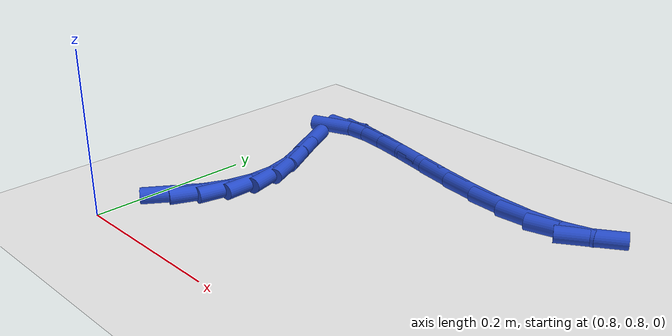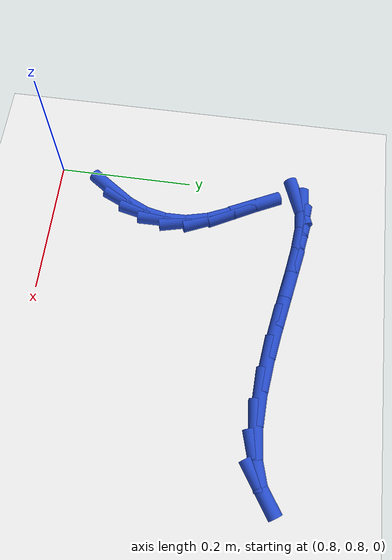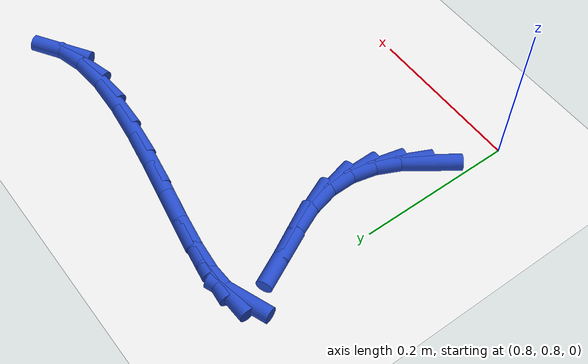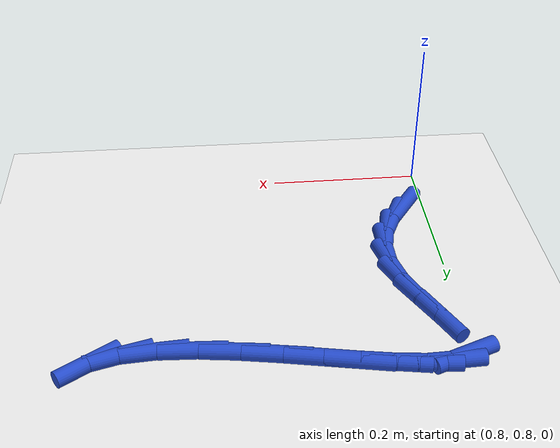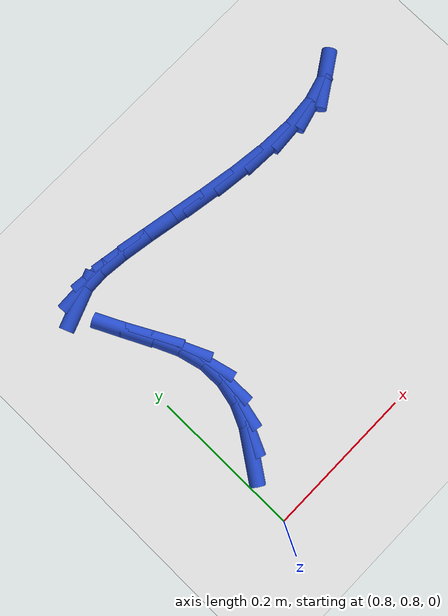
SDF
<sdf version="1.6">
 <world name="default">
  <model name="ground_plane">
   <static>1</static>
   <link name="link">
    <collision name="collision">
     <geometry><plane><normal>0 0 1</normal><size>100 100</size></plane></geometry>
     <surface><friction><ode><mu>100</mu><mu2>50</mu2></ode></friction></surface>
    </collision>
    <visual name="visual">
     <cast_shadows>0</cast_shadows>
     <geometry><plane><normal>0 0 1</normal><size>100 100</size></plane></geometry>
     <material>
      <script><uri>file://media/materials/scripts/gazebo.material</uri><name>Gazebo/WhiteGlow</name></script>
     </material>
    </visual>
   </link>
  </model>
  <model name="line">
   <link name="link_38">
    <pose>0.8317315326991243 0.8856542499343899 0.01 0 1.57 0.9577497156196378</pose>
    <collision name="collision">
     <geometry><cylinder><radius>0.01</radius><length>0.08</length></cylinder></geometry>
    </collision>
    <visual name="visual">
     <material>
      <script><name>Gazebo/Blue</name><uri>file://media/materials/scripts/gazebo.material</uri></script>
     </material>
     <geometry><cylinder><radius>0.01</radius><length>0.08</length></cylinder></geometry>
    </visual>
   </link>
   <link name="link_39">
    <pose>0.8506903101501084 0.9126048738863863 0.01 0 1.57 1.1369555155943236</pose>
    <collision name="collision">
     <geometry><cylinder><radius>0.01</radius><length>0.08</length></cylinder></geometry>
    </collision>
    <visual name="visual">
     <material>
      <script><name>Gazebo/Blue</name><uri>file://media/materials/scripts/gazebo.material</uri></script>
     </material>
     <geometry><cylinder><radius>0.01</radius><length>0.08</length></cylinder></geometry>
    </visual>
   </link>
   <link name="link_40">
    <pose>0.8639275971794897 0.9411779759468609 0.01 0 1.57 1.350051564740795</pose>
    <collision name="collision">
     <geometry><cylinder><radius>0.01</radius><length>0.08</length></cylinder></geometry>
    </collision>
    <visual name="visual">
     <material>
      <script><name>Gazebo/Blue</name><uri>file://media/materials/scripts/gazebo.material</uri></script>
     </material>
     <geometry><cylinder><radius>0.01</radius><length>0.08</length></cylinder></geometry>
    </visual>
   </link>
   <link name="link_41">
    <pose>0.8707044877910336 0.9713778137900764 0.01 0 1.57 -1.5575265819794573</pose>
    <collision name="collision">
     <geometry><cylinder><radius>0.01</radius><length>0.08</length></cylinder></geometry>
    </collision>
    <visual name="visual">
     <material>
      <script><name>Gazebo/Blue</name><uri>file://media/materials/scripts/gazebo.material</uri></script>
     </material>
     <geometry><cylinder><radius>0.01</radius><length>0.08</length></cylinder></geometry>
    </visual>
   </link>
   <link name="link_42">
    <pose>0.8702820759885058 1.0032086450902962 0.01 0 1.57 -1.3261108181710088</pose>
    <collision name="collision">
     <geometry><cylinder><radius>0.01</radius><length>0.08</length></cylinder></geometry>
    </collision>
    <visual name="visual">
     <material>
      <script><name>Gazebo/Blue</name><uri>file://media/materials/scripts/gazebo.material</uri></script>
     </material>
     <geometry><cylinder><radius>0.01</radius><length>0.08</length></cylinder></geometry>
    </visual>
   </link>
   <link name="link_43">
    <pose>0.861926518027787 1.036672566801154 0.01 0 1.57 -1.1503029712033523</pose>
    <collision name="collision">
     <geometry><cylinder><radius>0.01</radius><length>0.08</length></cylinder></geometry>
    </collision>
    <visual name="visual">
     <material>
      <script><name>Gazebo/Blue</name><uri>file://media/materials/scripts/gazebo.material</uri></script>
     </material>
     <geometry><cylinder><radius>0.01</radius><length>0.08</length></cylinder></geometry>
    </visual>
   </link>
   <link name="link_44">
    <pose>0.8465445765529488 1.0710714159947974 0.01 0 1.57 -1.0820534770450037</pose>
    <collision name="collision">
     <geometry><cylinder><radius>0.01</radius><length>0.08</length></cylinder></geometry>
    </collision>
    <visual name="visual">
     <material>
      <script><name>Gazebo/Blue</name><uri>file://media/materials/scripts/gazebo.material</uri></script>
     </material>
     <geometry><cylinder><radius>0.01</radius><length>0.08</length></cylinder></geometry>
    </visual>
   </link>
   <link name="link_45">
    <pose>0.8290315501520201 1.1040046032945137 0.01 0 1.57 -1.1141775698686194</pose>
    <collision name="collision">
     <geometry><cylinder><radius>0.01</radius><length>0.08</length></cylinder></geometry>
    </collision>
    <visual name="visual">
     <material>
      <script><name>Gazebo/Blue</name><uri>file://media/materials/scripts/gazebo.material</uri></script>
     </material>
     <geometry><cylinder><radius>0.01</radius><length>0.08</length></cylinder></geometry>
    </visual>
   </link>
   <link name="link_48">
    <pose>0.8162795628326202 1.1687588124125254 0.01 0 1.57 0.368221571323874</pose>
    <collision name="collision">
     <geometry><cylinder><radius>0.01</radius><length>0.08</length></cylinder></geometry>
    </collision>
    <visual name="visual">
     <material>
      <script><name>Gazebo/Blue</name><uri>file://media/materials/scripts/gazebo.material</uri></script>
     </material>
     <geometry><cylinder><radius>0.01</radius><length>0.08</length></cylinder></geometry>
    </visual>
   </link>
   <link name="link_49">
    <pose>0.8338753520867683 1.1755475951564798 0.01 0 1.57 0.038166733122667724</pose>
    <collision name="collision">
     <geometry><cylinder><radius>0.01</radius><length>0.08</length></cylinder></geometry>
    </collision>
    <visual name="visual">
     <material>
      <script><name>Gazebo/Blue</name><uri>file://media/materials/scripts/gazebo.material</uri></script>
     </material>
     <geometry><cylinder><radius>0.01</radius><length>0.08</length></cylinder></geometry>
    </visual>
   </link>
   <link name="link_50">
    <pose>0.8606500818916818 1.1765699956150115 0.01 0 1.57 -0.09911304540920102</pose>
    <collision name="collision">
     <geometry><cylinder><radius>0.01</radius><length>0.08</length></cylinder></geometry>
    </collision>
    <visual name="visual">
     <material>
      <script><name>Gazebo/Blue</name><uri>file://media/materials/scripts/gazebo.material</uri></script>
     </material>
     <geometry><cylinder><radius>0.01</radius><length>0.08</length></cylinder></geometry>
    </visual>
   </link>
   <link name="link_51">
    <pose>0.894913250451083 1.1731629049205237 0.01 0 1.57 -0.16084288697112148</pose>
    <collision name="collision">
     <geometry><cylinder><radius>0.01</radius><length>0.08</length></cylinder></geometry>
    </collision>
    <visual name="visual">
     <material>
      <script><name>Gazebo/Blue</name><uri>file://media/materials/scripts/gazebo.material</uri></script>
     </material>
     <geometry><cylinder><radius>0.01</radius><length>0.08</length></cylinder></geometry>
    </visual>
   </link>
   <link name="link_52">
    <pose>0.9349743559686962 1.166663214205418 0.01 0 1.57 -0.1847748131101139</pose>
    <collision name="collision">
     <geometry><cylinder><radius>0.01</radius><length>0.08</length></cylinder></geometry>
    </collision>
    <visual name="visual">
     <material>
      <script><name>Gazebo/Blue</name><uri>file://media/materials/scripts/gazebo.material</uri></script>
     </material>
     <geometry><cylinder><radius>0.01</radius><length>0.08</length></cylinder></geometry>
    </visual>
   </link>
   <link name="link_53">
    <pose>0.9791428966482425 1.1584078146020962 0.01 0 1.57 -0.18409184921344965</pose>
    <collision name="collision">
     <geometry><cylinder><radius>0.01</radius><length>0.08</length></cylinder></geometry>
    </collision>
    <visual name="visual">
     <material>
      <script><name>Gazebo/Blue</name><uri>file://media/materials/scripts/gazebo.material</uri></script>
     </material>
     <geometry><cylinder><radius>0.01</radius><length>0.08</length></cylinder></geometry>
    </visual>
   </link>
   <link name="link_54">
    <pose>1.0257283706934461 1.1497335972429616 0.01 0 1.57 -0.16249104160121441</pose>
    <collision name="collision">
     <geometry><cylinder><radius>0.01</radius><length>0.08</length></cylinder></geometry>
    </collision>
    <visual name="visual">
     <material>
      <script><name>Gazebo/Blue</name><uri>file://media/materials/scripts/gazebo.material</uri></script>
     </material>
     <geometry><cylinder><radius>0.01</radius><length>0.08</length></cylinder></geometry>
    </visual>
   </link>
   <link name="link_55">
    <pose>1.07304027630803 1.1419774532604159 0.01 0 1.57 -0.11814061830069224</pose>
    <collision name="collision">
     <geometry><cylinder><radius>0.01</radius><length>0.08</length></cylinder></geometry>
    </collision>
    <visual name="visual">
     <material>
      <script><name>Gazebo/Blue</name><uri>file://media/materials/scripts/gazebo.material</uri></script>
     </material>
     <geometry><cylinder><radius>0.01</radius><length>0.08</length></cylinder></geometry>
    </visual>
   </link>
   <link name="link_56">
    <pose>1.119388111695717 1.1364762737868612 0.01 0 1.57 -0.04367057439949822</pose>
    <collision name="collision">
     <geometry><cylinder><radius>0.01</radius><length>0.08</length></cylinder></geometry>
    </collision>
    <visual name="visual">
     <material>
      <script><name>Gazebo/Blue</name><uri>file://media/materials/scripts/gazebo.material</uri></script>
     </material>
     <geometry><cylinder><radius>0.01</radius><length>0.08</length></cylinder></geometry>
    </visual>
   </link>
   <link name="link_57">
    <pose>1.1630813750602293 1.1345669499547002 0.01 0 1.57 0.07658591892966146</pose>
    <collision name="collision">
     <geometry><cylinder><radius>0.01</radius><length>0.08</length></cylinder></geometry>
    </collision>
    <visual name="visual">
     <material>
      <script><name>Gazebo/Blue</name><uri>file://media/materials/scripts/gazebo.material</uri></script>
     </material>
     <geometry><cylinder><radius>0.01</radius><length>0.08</length></cylinder></geometry>
    </visual>
   </link>
   <link name="link_58">
    <pose>1.2024295646052916 1.137586372896335 0.01 0 1.57 0.2718260754717742</pose>
    <collision name="collision">
     <geometry><cylinder><radius>0.01</radius><length>0.08</length></cylinder></geometry>
    </collision>
    <visual name="visual">
     <material>
      <script><name>Gazebo/Blue</name><uri>file://media/materials/scripts/gazebo.material</uri></script>
     </material>
     <geometry><cylinder><radius>0.01</radius><length>0.08</length></cylinder></geometry>
    </visual>
   </link>
   <link name="link_59">
    <pose>1.2357421785346252 1.1468714337441674 0.01 0 1.57 0.5833859597466695</pose>
    <collision name="collision">
     <geometry><cylinder><radius>0.01</radius><length>0.08</length></cylinder></geometry>
    </collision>
    <visual name="visual">
     <material>
      <script><name>Gazebo/Blue</name><uri>file://media/materials/scripts/gazebo.material</uri></script>
     </material>
     <geometry><cylinder><radius>0.01</radius><length>0.08</length></cylinder></geometry>
    </visual>
   </link>
  </model>
 </world>
</sdf>
